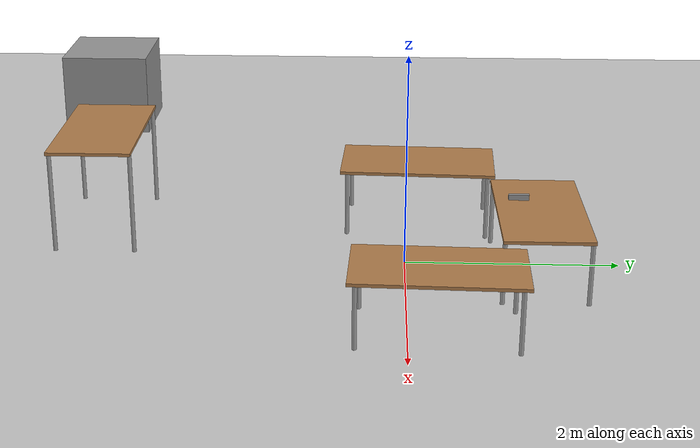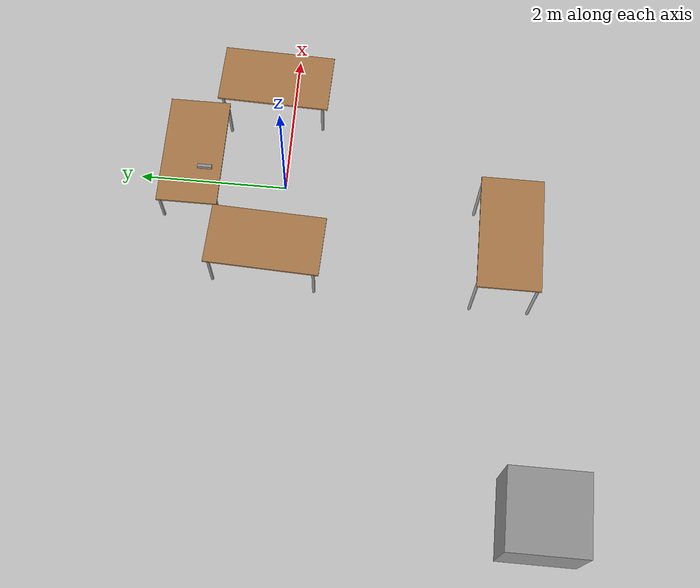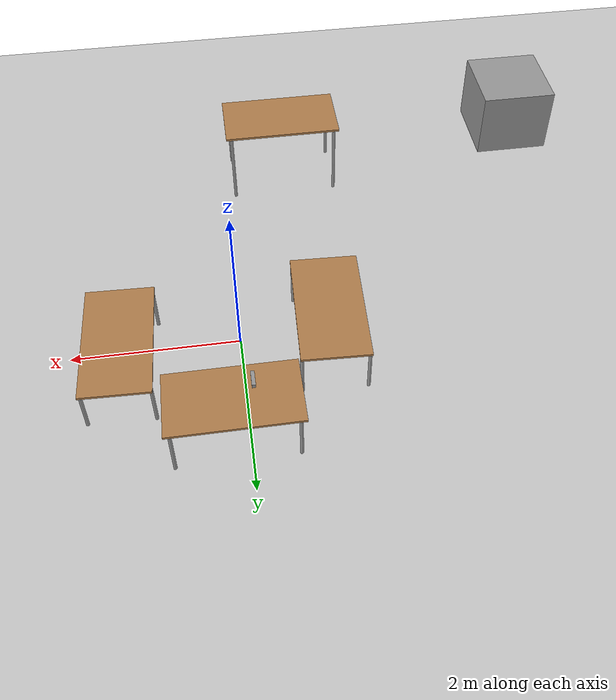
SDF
<sdf version="1.6">
 <world name="default">
  <light name="sun" type="directional">
   <pose>0 0 10 0 -0 0</pose>
   <diffuse>0.8 0.8 0.8 1</diffuse>
   <specular>0.2 0.2 0.2 1</specular>
   <attenuation>
    <range>1000</range>
    <constant>0.9</constant>
    <linear>0.01</linear>
    <quadratic>0.001</quadratic>
   </attenuation>
   <direction>-0.5 0.1 -0.9</direction>
  </light>
  <model name="ground_plane">
   <static>1</static>
   <link name="link">
    <collision name="collision">
     <geometry><plane><normal>0 0 1</normal><size>100 100</size></plane></geometry>
     <surface><friction><ode><mu>100</mu><mu2>50</mu2></ode></friction></surface>
    </collision>
    <visual name="visual">
     <cast_shadows>0</cast_shadows>
     <geometry><plane><normal>0 0 1</normal><size>100 100</size></plane></geometry>
     <material>
      <script><uri>file://media/materials/scripts/gazebo.material</uri><name>Gazebo/Grey</name></script>
     </material>
    </visual>
   </link>
  </model>
  <physics name="default_physics" default="0" type="ode">
   <max_step_size>0.01</max_step_size>
   <real_time_factor>1</real_time_factor>
   <real_time_update_rate>100</real_time_update_rate>
  </physics>
  <scene><ambient>0.4 0.4 0.4 1</ambient><background>0.7 0.7 0.7 1</background><shadows>1</shadows></scene>
  <model name="table">
   <static>1</static>
   <link name="link">
    <collision name="surface">
     <pose>0 0 1 0 -0 0</pose>
     <geometry><box><size>1.5 0.8 0.03</size></box></geometry>
    </collision>
    <visual name="visual1">
     <pose>0 0 1 0 -0 0</pose>
     <geometry><box><size>1.5 0.8 0.03</size></box></geometry>
     <material>
      <script><uri>file://media/materials/scripts/gazebo.material</uri><name>Gazebo/Wood</name></script>
     </material>
    </visual>
    <collision name="front_left_leg">
     <pose>0.68 0.38 0.5 0 -0 0</pose>
     <geometry><cylinder><radius>0.02</radius><length>1</length></cylinder></geometry>
    </collision>
    <visual name="front_left_leg">
     <pose>0.68 0.38 0.5 0 -0 0</pose>
     <geometry><cylinder><radius>0.02</radius><length>1</length></cylinder></geometry>
     <material>
      <script><uri>file://media/materials/scripts/gazebo.material</uri><name>Gazebo/Grey</name></script>
     </material>
    </visual>
    <collision name="front_right_leg">
     <pose>0.68 -0.38 0.5 0 -0 0</pose>
     <geometry><cylinder><radius>0.02</radius><length>1</length></cylinder></geometry>
    </collision>
    <visual name="front_right_leg">
     <pose>0.68 -0.38 0.5 0 -0 0</pose>
     <geometry><cylinder><radius>0.02</radius><length>1</length></cylinder></geometry>
     <material>
      <script><uri>file://media/materials/scripts/gazebo.material</uri><name>Gazebo/Grey</name></script>
     </material>
    </visual>
    <collision name="back_right_leg">
     <pose>-0.68 -0.38 0.5 0 -0 0</pose>
     <geometry><cylinder><radius>0.02</radius><length>1</length></cylinder></geometry>
    </collision>
    <visual name="back_right_leg">
     <pose>-0.68 -0.38 0.5 0 -0 0</pose>
     <geometry><cylinder><radius>0.02</radius><length>1</length></cylinder></geometry>
     <material>
      <script><uri>file://media/materials/scripts/gazebo.material</uri><name>Gazebo/Grey</name></script>
     </material>
    </visual>
    <collision name="back_left_leg">
     <pose>-0.68 0.38 0.5 0 -0 0</pose>
     <geometry><cylinder><radius>0.02</radius><length>1</length></cylinder></geometry>
    </collision>
    <visual name="back_left_leg">
     <pose>-0.68 0.38 0.5 0 -0 0</pose>
     <geometry><cylinder><radius>0.02</radius><length>1</length></cylinder></geometry>
     <material>
      <script><uri>file://media/materials/scripts/gazebo.material</uri><name>Gazebo/Grey</name></script>
     </material>
    </visual>
    <velocity_decay><linear>0</linear><angular>0</angular></velocity_decay>
   </link>
   <pose>-1.04756 0.139477 -0.368184 0 0 -1.61317</pose>
  </model>
  <model name="table_1">
   <static>1</static>
   <link name="link">
    <collision name="surface">
     <pose>0 0 1 0 -0 0</pose>
     <geometry><box><size>1.5 0.8 0.03</size></box></geometry>
    </collision>
    <visual name="visual1">
     <pose>0 0 1 0 -0 0</pose>
     <geometry><box><size>1.5 0.8 0.03</size></box></geometry>
     <material>
      <script><uri>file://media/materials/scripts/gazebo.material</uri><name>Gazebo/Wood</name></script>
     </material>
    </visual>
    <collision name="front_left_leg">
     <pose>0.68 0.38 0.5 0 -0 0</pose>
     <geometry><cylinder><radius>0.02</radius><length>1</length></cylinder></geometry>
    </collision>
    <visual name="front_left_leg">
     <pose>0.68 0.38 0.5 0 -0 0</pose>
     <geometry><cylinder><radius>0.02</radius><length>1</length></cylinder></geometry>
     <material>
      <script><uri>file://media/materials/scripts/gazebo.material</uri><name>Gazebo/Grey</name></script>
     </material>
    </visual>
    <collision name="front_right_leg">
     <pose>0.68 -0.38 0.5 0 -0 0</pose>
     <geometry><cylinder><radius>0.02</radius><length>1</length></cylinder></geometry>
    </collision>
    <visual name="front_right_leg">
     <pose>0.68 -0.38 0.5 0 -0 0</pose>
     <geometry><cylinder><radius>0.02</radius><length>1</length></cylinder></geometry>
     <material>
      <script><uri>file://media/materials/scripts/gazebo.material</uri><name>Gazebo/Grey</name></script>
     </material>
    </visual>
    <collision name="back_right_leg">
     <pose>-0.68 -0.38 0.5 0 -0 0</pose>
     <geometry><cylinder><radius>0.02</radius><length>1</length></cylinder></geometry>
    </collision>
    <visual name="back_right_leg">
     <pose>-0.68 -0.38 0.5 0 -0 0</pose>
     <geometry><cylinder><radius>0.02</radius><length>1</length></cylinder></geometry>
     <material>
      <script><uri>file://media/materials/scripts/gazebo.material</uri><name>Gazebo/Grey</name></script>
     </material>
    </visual>
    <collision name="back_left_leg">
     <pose>-0.68 0.38 0.5 0 -0 0</pose>
     <geometry><cylinder><radius>0.02</radius><length>1</length></cylinder></geometry>
    </collision>
    <visual name="back_left_leg">
     <pose>-0.68 0.38 0.5 0 -0 0</pose>
     <geometry><cylinder><radius>0.02</radius><length>1</length></cylinder></geometry>
     <material>
      <script><uri>file://media/materials/scripts/gazebo.material</uri><name>Gazebo/Grey</name></script>
     </material>
    </visual>
    <velocity_decay><linear>0</linear><angular>0</angular></velocity_decay>
   </link>
   <pose>0.152155 1.22696 -0.396027 0 -0 0</pose>
  </model>
  <model name="table_3">
   <static>1</static>
   <link name="link">
    <collision name="surface">
     <pose>0 0 1 0 -0 0</pose>
     <geometry><box><size>1.5 0.8 0.03</size></box></geometry>
    </collision>
    <visual name="visual1">
     <pose>0 0 1 0 -0 0</pose>
     <geometry><box><size>1.5 0.8 0.03</size></box></geometry>
     <material>
      <script><uri>file://media/materials/scripts/gazebo.material</uri><name>Gazebo/Wood</name></script>
     </material>
    </visual>
    <collision name="front_left_leg">
     <pose>0.68 0.38 0.5 0 -0 0</pose>
     <geometry><cylinder><radius>0.02</radius><length>1</length></cylinder></geometry>
    </collision>
    <visual name="front_left_leg">
     <pose>0.68 0.38 0.5 0 -0 0</pose>
     <geometry><cylinder><radius>0.02</radius><length>1</length></cylinder></geometry>
     <material>
      <script><uri>file://media/materials/scripts/gazebo.material</uri><name>Gazebo/Grey</name></script>
     </material>
    </visual>
    <collision name="front_right_leg">
     <pose>0.68 -0.38 0.5 0 -0 0</pose>
     <geometry><cylinder><radius>0.02</radius><length>1</length></cylinder></geometry>
    </collision>
    <visual name="front_right_leg">
     <pose>0.68 -0.38 0.5 0 -0 0</pose>
     <geometry><cylinder><radius>0.02</radius><length>1</length></cylinder></geometry>
     <material>
      <script><uri>file://media/materials/scripts/gazebo.material</uri><name>Gazebo/Grey</name></script>
     </material>
    </visual>
    <collision name="back_right_leg">
     <pose>-0.68 -0.38 0.5 0 -0 0</pose>
     <geometry><cylinder><radius>0.02</radius><length>1</length></cylinder></geometry>
    </collision>
    <visual name="back_right_leg">
     <pose>-0.68 -0.38 0.5 0 -0 0</pose>
     <geometry><cylinder><radius>0.02</radius><length>1</length></cylinder></geometry>
     <material>
      <script><uri>file://media/materials/scripts/gazebo.material</uri><name>Gazebo/Grey</name></script>
     </material>
    </visual>
    <collision name="back_left_leg">
     <pose>-0.68 0.38 0.5 0 -0 0</pose>
     <geometry><cylinder><radius>0.02</radius><length>1</length></cylinder></geometry>
    </collision>
    <visual name="back_left_leg">
     <pose>-0.68 0.38 0.5 0 -0 0</pose>
     <geometry><cylinder><radius>0.02</radius><length>1</length></cylinder></geometry>
     <material>
      <script><uri>file://media/materials/scripts/gazebo.material</uri><name>Gazebo/Grey</name></script>
     </material>
    </visual>
    <velocity_decay><linear>0</linear><angular>0</angular></velocity_decay>
   </link>
   <pose>1.36875 0.254674 -0.424032 0 -0 1.53747</pose>
  </model>
  <model name="table_4">
   <static>1</static>
   <link name="link">
    <collision name="surface">
     <pose>0 0 1 0 -0 0</pose>
     <geometry><box><size>1.5 0.8 0.03</size></box></geometry>
    </collision>
    <visual name="visual1">
     <pose>0 0 1 0 -0 0</pose>
     <geometry><box><size>1.5 0.8 0.03</size></box></geometry>
     <material>
      <script><uri>file://media/materials/scripts/gazebo.material</uri><name>Gazebo/Wood</name></script>
     </material>
    </visual>
    <collision name="front_left_leg">
     <pose>0.68 0.38 0.5 0 -0 0</pose>
     <geometry><cylinder><radius>0.02</radius><length>1</length></cylinder></geometry>
    </collision>
    <visual name="front_left_leg">
     <pose>0.68 0.38 0.5 0 -0 0</pose>
     <geometry><cylinder><radius>0.02</radius><length>1</length></cylinder></geometry>
     <material>
      <script><uri>file://media/materials/scripts/gazebo.material</uri><name>Gazebo/Grey</name></script>
     </material>
    </visual>
    <collision name="front_right_leg">
     <pose>0.68 -0.38 0.5 0 -0 0</pose>
     <geometry><cylinder><radius>0.02</radius><length>1</length></cylinder></geometry>
    </collision>
    <visual name="front_right_leg">
     <pose>0.68 -0.38 0.5 0 -0 0</pose>
     <geometry><cylinder><radius>0.02</radius><length>1</length></cylinder></geometry>
     <material>
      <script><uri>file://media/materials/scripts/gazebo.material</uri><name>Gazebo/Grey</name></script>
     </material>
    </visual>
    <collision name="back_right_leg">
     <pose>-0.68 -0.38 0.5 0 -0 0</pose>
     <geometry><cylinder><radius>0.02</radius><length>1</length></cylinder></geometry>
    </collision>
    <visual name="back_right_leg">
     <pose>-0.68 -0.38 0.5 0 -0 0</pose>
     <geometry><cylinder><radius>0.02</radius><length>1</length></cylinder></geometry>
     <material>
      <script><uri>file://media/materials/scripts/gazebo.material</uri><name>Gazebo/Grey</name></script>
     </material>
    </visual>
    <collision name="back_left_leg">
     <pose>-0.68 0.38 0.5 0 -0 0</pose>
     <geometry><cylinder><radius>0.02</radius><length>1</length></cylinder></geometry>
    </collision>
    <visual name="back_left_leg">
     <pose>-0.68 0.38 0.5 0 -0 0</pose>
     <geometry><cylinder><radius>0.02</radius><length>1</length></cylinder></geometry>
     <material>
      <script><uri>file://media/materials/scripts/gazebo.material</uri><name>Gazebo/Grey</name></script>
     </material>
    </visual>
    <velocity_decay><linear>0</linear><angular>0</angular></velocity_decay>
   </link>
   <pose>-0.833899 -2.95962 0 0 -0 0</pose>
  </model>
  <gravity>0 0 -9.8</gravity>
  <magnetic_field>6e-06 2.3e-05 -4.2e-05</magnetic_field>
  <atmosphere type="adiabatic"/>
  <spherical_coordinates>
   <surface_model>EARTH_WGS84</surface_model>
   <latitude_deg>0</latitude_deg>
   <longitude_deg>0</longitude_deg>
   <elevation>0</elevation>
   <heading_deg>0</heading_deg>
  </spherical_coordinates>
  <model name="unit_box">
   <pose>-4.22348 -3.5281 0.409012 0 -0 0</pose>
   <link name="link">
    <inertial>
     <mass>1</mass>
     <inertia>
      <ixx>0.166667</ixx>
      <ixy>0</ixy>
      <ixz>0</ixz>
      <iyy>0.166667</iyy>
      <iyz>0</iyz>
      <izz>0.166667</izz>
     </inertia>
    </inertial>
    <collision name="collision"><geometry><box><size>1 1 1</size></box></geometry></collision>
    <visual name="visual">
     <geometry><box><size>1 1 1</size></box></geometry>
     <material>
      <script><name>Gazebo/Grey</name><uri>file://media/materials/scripts/gazebo.material</uri></script>
     </material>
    </visual>
   </link>
  </model>
  <model name="unit_box_0">
   <pose>-0.081879 1.04764 0.644071 7.5e-05 0.000139 2.8e-05</pose>
   <link name="link">
    <inertial>
     <mass>1</mass>
     <inertia>
      <ixx>0.166667</ixx>
      <ixy>0</ixy>
      <ixz>0</ixz>
      <iyy>0.166667</iyy>
      <iyz>0</iyz>
      <izz>0.166667</izz>
     </inertia>
    </inertial>
    <collision name="collision">
     <geometry><box><size>0.0432519 0.188801 0.0519275</size></box></geometry>
    </collision>
    <visual name="visual">
     <geometry><box><size>0.0432519 0.188801 0.0519275</size></box></geometry>
     <material>
      <script><name>Gazebo/Grey</name><uri>file://media/materials/scripts/gazebo.material</uri></script>
     </material>
    </visual>
   </link>
  </model>
 </world>
</sdf>
